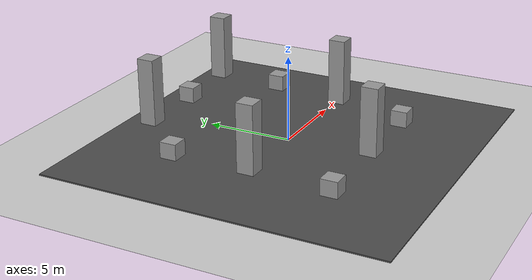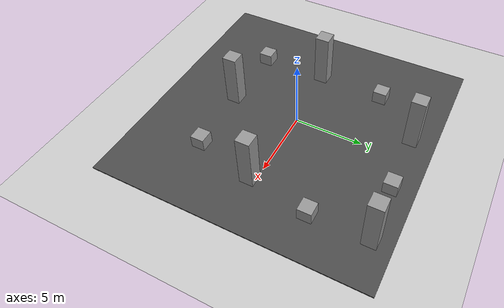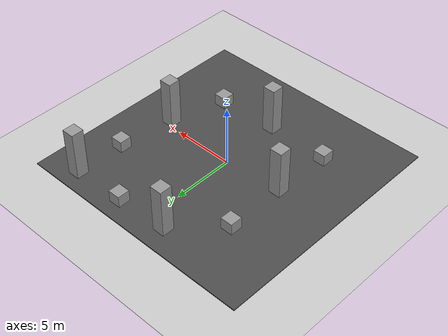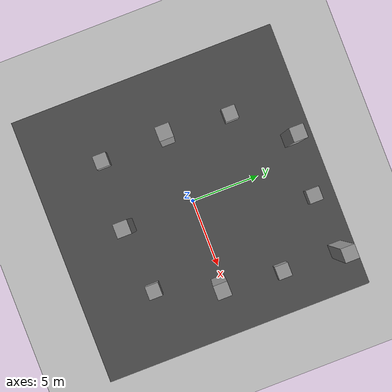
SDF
<sdf version="1.6">
 <world name="default">
  <light name="sun" type="directional">
   <pose>0 0 10 0 -0 0</pose>
   <diffuse>0.8 0.8 0.8 1</diffuse>
   <specular>0.1 0.1 0.1 1</specular>
   <attenuation>
    <range>1000</range>
    <constant>0.9</constant>
    <linear>0.01</linear>
    <quadratic>0.001</quadratic>
   </attenuation>
   <direction>-0.5 0.5 -1</direction>
  </light>
  <model name="ground_plane">
   <static>1</static>
   <link name="link">
    <collision name="collision">
     <geometry><plane><normal>0 0 1</normal><size>100 100</size></plane></geometry>
     <surface><friction><ode><mu>100</mu><mu2>50</mu2></ode></friction></surface>
    </collision>
    <visual name="visual">
     <cast_shadows>0</cast_shadows>
     <geometry><plane><normal>0 0 1</normal><size>100 100</size></plane></geometry>
     <material>
      <script><uri>file://media/materials/scripts/gazebo.material</uri><name>Gazebo/Grey</name></script>
     </material>
    </visual>
   </link>
  </model>
  <gravity>0 0 -9.8</gravity>
  <magnetic_field>6e-06 2.3e-05 -4.2e-05</magnetic_field>
  <atmosphere type="adiabatic"/>
  <physics name="default_physics" default="0" type="ode">
   <max_step_size>0.001</max_step_size>
   <real_time_factor>1</real_time_factor>
   <real_time_update_rate>1000</real_time_update_rate>
  </physics>
  <scene><ambient>0.4 0.4 0.4 1</ambient><background>0.7 0.7 0.7 1</background><shadows>1</shadows></scene>
  <spherical_coordinates>
   <surface_model>EARTH_WGS84</surface_model>
   <latitude_deg>0</latitude_deg>
   <longitude_deg>0</longitude_deg>
   <elevation>0</elevation>
   <heading_deg>0</heading_deg>
  </spherical_coordinates>
  <model name="unit_box_4">
   <pose>-4.84163 4.66087 0.499995 0 -1e-05 0</pose>
   <link name="link">
    <inertial>
     <mass>1</mass>
     <inertia>
      <ixx>0.166667</ixx>
      <ixy>0</ixy>
      <ixz>0</ixz>
      <iyy>0.166667</iyy>
      <iyz>0</iyz>
      <izz>0.166667</izz>
     </inertia>
    </inertial>
    <collision name="collision"><geometry><box><size>1 1 1</size></box></geometry></collision>
    <visual name="visual">
     <geometry><box><size>1 1 1</size></box></geometry>
     <material>
      <script><name>Gazebo/Grey</name><uri>file://media/materials/scripts/gazebo.material</uri></script>
     </material>
    </visual>
   </link>
  </model>
  <model name="unit_box_6">
   <pose>-4.97486 -5.05588 0.499995 0 -1e-05 0</pose>
   <link name="link">
    <inertial>
     <mass>1</mass>
     <inertia>
      <ixx>0.166667</ixx>
      <ixy>0</ixy>
      <ixz>0</ixz>
      <iyy>0.166667</iyy>
      <iyz>0</iyz>
      <izz>0.166667</izz>
     </inertia>
    </inertial>
    <collision name="collision"><geometry><box><size>1 1 1</size></box></geometry></collision>
    <visual name="visual">
     <geometry><box><size>1 1 1</size></box></geometry>
     <material>
      <script><name>Gazebo/Grey</name><uri>file://media/materials/scripts/gazebo.material</uri></script>
     </material>
    </visual>
   </link>
  </model>
  <model name="unit_box_3_0">
   <pose>6.93728 4.1837 0.499995 0 -1e-05 0</pose>
   <link name="link">
    <inertial>
     <mass>1</mass>
     <inertia>
      <ixx>0.166667</ixx>
      <ixy>0</ixy>
      <ixz>0</ixz>
      <iyy>0.166667</iyy>
      <iyz>0</iyz>
      <izz>0.166667</izz>
     </inertia>
    </inertial>
    <collision name="collision"><geometry><box><size>1 1 1</size></box></geometry></collision>
    <visual name="visual">
     <geometry><box><size>1 1 1</size></box></geometry>
     <material>
      <script><name>Gazebo/Grey</name><uri>file://media/materials/scripts/gazebo.material</uri></script>
     </material>
    </visual>
   </link>
  </model>
  <model name="unit_box_0_0">
   <pose>4.97392 -4.89194 0.499995 0 -1e-05 0</pose>
   <link name="link">
    <inertial>
     <mass>1</mass>
     <inertia>
      <ixx>0.166667</ixx>
      <ixy>0</ixy>
      <ixz>0</ixz>
      <iyy>0.166667</iyy>
      <iyz>0</iyz>
      <izz>0.166667</izz>
     </inertia>
    </inertial>
    <collision name="collision"><geometry><box><size>1 1 1</size></box></geometry></collision>
    <visual name="visual">
     <geometry><box><size>1 1 1</size></box></geometry>
     <material>
      <script><name>Gazebo/Grey</name><uri>file://media/materials/scripts/gazebo.material</uri></script>
     </material>
    </visual>
   </link>
  </model>
  <model name="unit_box_3_0_clone">
   <pose>2.6904 8.16108 0.499995 0 -1e-05 0</pose>
   <link name="link">
    <inertial>
     <mass>1</mass>
     <inertia>
      <ixx>0.166667</ixx>
      <ixy>0</ixy>
      <ixz>0</ixz>
      <iyy>0.166667</iyy>
      <iyz>0</iyz>
      <izz>0.166667</izz>
     </inertia>
    </inertial>
    <collision name="collision"><geometry><box><size>1 1 1</size></box></geometry></collision>
    <visual name="visual">
     <geometry><box><size>1 1 1</size></box></geometry>
     <material>
      <script><name>Gazebo/Grey</name><uri>file://media/materials/scripts/gazebo.material</uri></script>
     </material>
    </visual>
   </link>
  </model>
  <model name="asphalt_plane">
   <static>1</static>
   <link name="link">
    <collision name="collision"><geometry><box><size>20 20 0.1</size></box></geometry></collision>
    <visual name="visual">
     <cast_shadows>0</cast_shadows>
     <geometry><box><size>20 20 0.1</size></box></geometry>
     <material>
      <script>
       <uri>model://asphalt_plane/materials/scripts</uri>
       <uri>model://asphalt_plane/materials/textures</uri>
       <name>vrc/asphalt</name>
      </script>
     </material>
    </visual>
   </link>
   <pose>0.069899 -0.23591 0 0 -0 0</pose>
  </model>
  <model name="unit_box_long_1">
   <link name="link">
    <pose>0 0 2.0248 0 -0 0</pose>
    <inertial>
     <mass>1</mass>
     <inertia>
      <ixx>0.166667</ixx>
      <ixy>0</ixy>
      <ixz>0</ixz>
      <iyy>0.166667</iyy>
      <iyz>0</iyz>
      <izz>0.166667</izz>
     </inertia>
    </inertial>
    <visual name="visual">
     <geometry><box><size>1 1 4</size></box></geometry>
     <material>
      <script><name>Gazebo/Grey</name><uri>file://media/materials/scripts/gazebo.material</uri></script>
      <ambient>0.3 0.3 0.3 1</ambient>
      <diffuse>0.7 0.7 0.7 1</diffuse>
      <specular>0.01 0.01 0.01 1</specular>
      <emissive>0 0 0 1</emissive>
      <shader type="vertex"><normal_map>__default__</normal_map></shader>
     </material>
    </visual>
    <collision name="collision">
     <geometry><box><size>1 1 4</size></box></geometry>
     <surface>
      <friction>
       <ode><mu>1e+08</mu><mu2>1</mu2><fdir1>0 0 0</fdir1><slip1>0</slip1><slip2>0</slip2></ode>
       <torsional>
        <coefficient>1</coefficient>
        <patch_radius>0</patch_radius>
        <surface_radius>0</surface_radius>
        <use_patch_radius>1</use_patch_radius>
        <ode><slip>0</slip></ode>
       </torsional>
      </friction>
      <bounce><restitution_coefficient>0</restitution_coefficient><threshold>1e+06</threshold></bounce>
      <contact>
       <collide_without_contact>0</collide_without_contact>
       <collide_without_contact_bitmask>1</collide_without_contact_bitmask>
       <collide_bitmask>1</collide_bitmask>
       <ode>
        <soft_cfm>0</soft_cfm>
        <soft_erp>0.2</soft_erp>
        <kp>1e+13</kp>
        <kd>1</kd>
        <max_vel>0.01</max_vel>
        <min_depth>0</min_depth>
       </ode>
       <bullet>
        <split_impulse>1</split_impulse>
        <split_impulse_penetration_threshold>-0.01</split_impulse_penetration_threshold>
        <soft_cfm>0</soft_cfm>
        <soft_erp>0.2</soft_erp>
        <kp>1e+13</kp>
        <kd>1</kd>
       </bullet>
      </contact>
     </surface>
    </collision>
   </link>
   <static>0</static>
   <pose>-4.89745 -0.174192 0.195714 0 -0 0</pose>
  </model>
  <model name="unit_box_long_1_clone">
   <link name="link">
    <pose>0 0 2.0248 0 -0 0</pose>
    <inertial>
     <mass>1</mass>
     <inertia>
      <ixx>0.166667</ixx>
      <ixy>0</ixy>
      <ixz>0</ixz>
      <iyy>0.166667</iyy>
      <iyz>0</iyz>
      <izz>0.166667</izz>
     </inertia>
    </inertial>
    <visual name="visual">
     <geometry><box><size>1 1 4</size></box></geometry>
     <material>
      <script><name>Gazebo/Grey</name><uri>file://media/materials/scripts/gazebo.material</uri></script>
      <ambient>0.3 0.3 0.3 1</ambient>
      <diffuse>0.7 0.7 0.7 1</diffuse>
      <specular>0.01 0.01 0.01 1</specular>
      <emissive>0 0 0 1</emissive>
      <shader type="vertex"><normal_map>__default__</normal_map></shader>
     </material>
    </visual>
    <collision name="collision">
     <geometry><box><size>1 1 4</size></box></geometry>
     <surface>
      <friction>
       <ode><mu>1e+08</mu><mu2>1</mu2><fdir1>0 0 0</fdir1><slip1>0</slip1><slip2>0</slip2></ode>
       <torsional>
        <coefficient>1</coefficient>
        <patch_radius>0</patch_radius>
        <surface_radius>0</surface_radius>
        <use_patch_radius>1</use_patch_radius>
        <ode><slip>0</slip></ode>
       </torsional>
      </friction>
      <bounce><restitution_coefficient>0</restitution_coefficient><threshold>1e+06</threshold></bounce>
      <contact>
       <collide_without_contact>0</collide_without_contact>
       <collide_without_contact_bitmask>1</collide_without_contact_bitmask>
       <collide_bitmask>1</collide_bitmask>
       <ode>
        <soft_cfm>0</soft_cfm>
        <soft_erp>0.2</soft_erp>
        <kp>1e+13</kp>
        <kd>1</kd>
        <max_vel>0.01</max_vel>
        <min_depth>0</min_depth>
       </ode>
       <bullet>
        <split_impulse>1</split_impulse>
        <split_impulse_penetration_threshold>-0.01</split_impulse_penetration_threshold>
        <soft_cfm>0</soft_cfm>
        <soft_erp>0.2</soft_erp>
        <kp>1e+13</kp>
        <kd>1</kd>
       </bullet>
      </contact>
     </surface>
    </collision>
   </link>
   <static>0</static>
   <pose>-1.68453 8.04985 0.195714 0 -0 0</pose>
  </model>
  <model name="unit_box_long_1_clone_0">
   <link name="link">
    <pose>0 0 2.0248 0 -0 0</pose>
    <inertial>
     <mass>1</mass>
     <inertia>
      <ixx>0.166667</ixx>
      <ixy>0</ixy>
      <ixz>0</ixz>
      <iyy>0.166667</iyy>
      <iyz>0</iyz>
      <izz>0.166667</izz>
     </inertia>
    </inertial>
    <visual name="visual">
     <geometry><box><size>1 1 4</size></box></geometry>
     <material>
      <script><name>Gazebo/Grey</name><uri>file://media/materials/scripts/gazebo.material</uri></script>
      <ambient>0.3 0.3 0.3 1</ambient>
      <diffuse>0.7 0.7 0.7 1</diffuse>
      <specular>0.01 0.01 0.01 1</specular>
      <emissive>0 0 0 1</emissive>
      <shader type="vertex"><normal_map>__default__</normal_map></shader>
     </material>
    </visual>
    <collision name="collision">
     <geometry><box><size>1 1 4</size></box></geometry>
     <surface>
      <friction>
       <ode><mu>1e+08</mu><mu2>1</mu2><fdir1>0 0 0</fdir1><slip1>0</slip1><slip2>0</slip2></ode>
       <torsional>
        <coefficient>1</coefficient>
        <patch_radius>0</patch_radius>
        <surface_radius>0</surface_radius>
        <use_patch_radius>1</use_patch_radius>
        <ode><slip>0</slip></ode>
       </torsional>
      </friction>
      <bounce><restitution_coefficient>0</restitution_coefficient><threshold>1e+06</threshold></bounce>
      <contact>
       <collide_without_contact>0</collide_without_contact>
       <collide_without_contact_bitmask>1</collide_without_contact_bitmask>
       <collide_bitmask>1</collide_bitmask>
       <ode>
        <soft_cfm>0</soft_cfm>
        <soft_erp>0.2</soft_erp>
        <kp>1e+13</kp>
        <kd>1</kd>
        <max_vel>0.01</max_vel>
        <min_depth>0</min_depth>
       </ode>
       <bullet>
        <split_impulse>1</split_impulse>
        <split_impulse_penetration_threshold>-0.01</split_impulse_penetration_threshold>
        <soft_cfm>0</soft_cfm>
        <soft_erp>0.2</soft_erp>
        <kp>1e+13</kp>
        <kd>1</kd>
       </bullet>
      </contact>
     </surface>
    </collision>
   </link>
   <static>0</static>
   <pose>6.92427 8.36251 0.195714 0 -0 0</pose>
  </model>
  <model name="unit_box_long_1_clone_1">
   <link name="link">
    <pose>0 0 2.0248 0 -0 0</pose>
    <inertial>
     <mass>1</mass>
     <inertia>
      <ixx>0.166667</ixx>
      <ixy>0</ixy>
      <ixz>0</ixz>
      <iyy>0.166667</iyy>
      <iyz>0</iyz>
      <izz>0.166667</izz>
     </inertia>
    </inertial>
    <visual name="visual">
     <geometry><box><size>1 1 4</size></box></geometry>
     <material>
      <script><name>Gazebo/Grey</name><uri>file://media/materials/scripts/gazebo.material</uri></script>
      <ambient>0.3 0.3 0.3 1</ambient>
      <diffuse>0.7 0.7 0.7 1</diffuse>
      <specular>0.01 0.01 0.01 1</specular>
      <emissive>0 0 0 1</emissive>
      <shader type="vertex"><normal_map>__default__</normal_map></shader>
     </material>
    </visual>
    <collision name="collision">
     <geometry><box><size>1 1 4</size></box></geometry>
     <surface>
      <friction>
       <ode><mu>1e+08</mu><mu2>1</mu2><fdir1>0 0 0</fdir1><slip1>0</slip1><slip2>0</slip2></ode>
       <torsional>
        <coefficient>1</coefficient>
        <patch_radius>0</patch_radius>
        <surface_radius>0</surface_radius>
        <use_patch_radius>1</use_patch_radius>
        <ode><slip>0</slip></ode>
       </torsional>
      </friction>
      <bounce><restitution_coefficient>0</restitution_coefficient><threshold>1e+06</threshold></bounce>
      <contact>
       <collide_without_contact>0</collide_without_contact>
       <collide_without_contact_bitmask>1</collide_without_contact_bitmask>
       <collide_bitmask>1</collide_bitmask>
       <ode>
        <soft_cfm>0</soft_cfm>
        <soft_erp>0.2</soft_erp>
        <kp>1e+13</kp>
        <kd>1</kd>
        <max_vel>0.01</max_vel>
        <min_depth>0</min_depth>
       </ode>
       <bullet>
        <split_impulse>1</split_impulse>
        <split_impulse_penetration_threshold>-0.01</split_impulse_penetration_threshold>
        <soft_cfm>0</soft_cfm>
        <soft_erp>0.2</soft_erp>
        <kp>1e+13</kp>
        <kd>1</kd>
       </bullet>
      </contact>
     </surface>
    </collision>
   </link>
   <static>0</static>
   <pose>6.21254 -0.323214 0.195714 0 -0 0</pose>
  </model>
  <model name="unit_box_long_1_clone_2">
   <link name="link">
    <pose>0 0 2.0248 0 -0 0</pose>
    <inertial>
     <mass>1</mass>
     <inertia>
      <ixx>0.166667</ixx>
      <ixy>0</ixy>
      <ixz>0</ixz>
      <iyy>0.166667</iyy>
      <iyz>0</iyz>
      <izz>0.166667</izz>
     </inertia>
    </inertial>
    <visual name="visual">
     <geometry><box><size>1 1 4</size></box></geometry>
     <material>
      <script><name>Gazebo/Grey</name><uri>file://media/materials/scripts/gazebo.material</uri></script>
      <ambient>0.3 0.3 0.3 1</ambient>
      <diffuse>0.7 0.7 0.7 1</diffuse>
      <specular>0.01 0.01 0.01 1</specular>
      <emissive>0 0 0 1</emissive>
      <shader type="vertex"><normal_map>__default__</normal_map></shader>
     </material>
    </visual>
    <collision name="collision">
     <geometry><box><size>1 1 4</size></box></geometry>
     <surface>
      <friction>
       <ode><mu>1e+08</mu><mu2>1</mu2><fdir1>0 0 0</fdir1><slip1>0</slip1><slip2>0</slip2></ode>
       <torsional>
        <coefficient>1</coefficient>
        <patch_radius>0</patch_radius>
        <surface_radius>0</surface_radius>
        <use_patch_radius>1</use_patch_radius>
        <ode><slip>0</slip></ode>
       </torsional>
      </friction>
      <bounce><restitution_coefficient>0</restitution_coefficient><threshold>1e+06</threshold></bounce>
      <contact>
       <collide_without_contact>0</collide_without_contact>
       <collide_without_contact_bitmask>1</collide_without_contact_bitmask>
       <collide_bitmask>1</collide_bitmask>
       <ode>
        <soft_cfm>0</soft_cfm>
        <soft_erp>0.2</soft_erp>
        <kp>1e+13</kp>
        <kd>1</kd>
        <max_vel>0.01</max_vel>
        <min_depth>0</min_depth>
       </ode>
       <bullet>
        <split_impulse>1</split_impulse>
        <split_impulse_penetration_threshold>-0.01</split_impulse_penetration_threshold>
        <soft_cfm>0</soft_cfm>
        <soft_erp>0.2</soft_erp>
        <kp>1e+13</kp>
        <kd>1</kd>
       </bullet>
      </contact>
     </surface>
    </collision>
   </link>
   <static>0</static>
   <pose>0.062291 -5.03823 0.195714 0 -0 0</pose>
  </model>
 </world>
</sdf>
